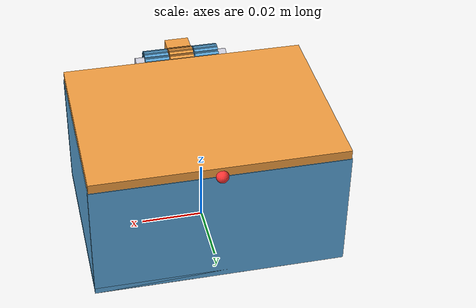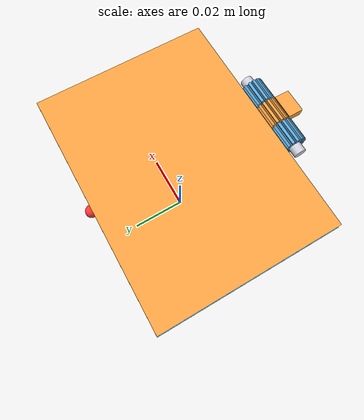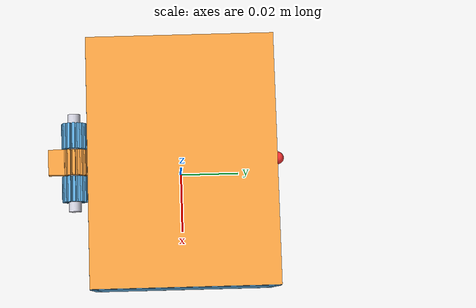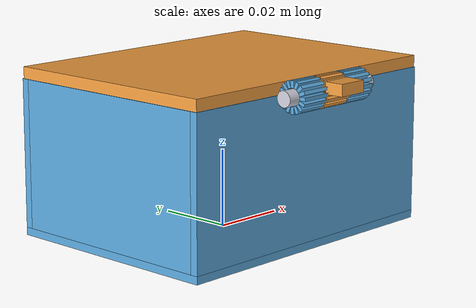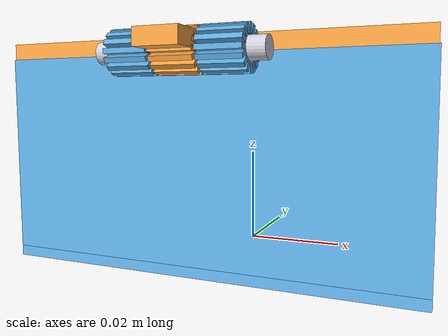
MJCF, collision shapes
<?xml version="1.0" ?>
<mujoco model="t2_sweep_V-B">
  <compiler angle="radian" meshdir="assets" autolimits="true"/>
  <option timestep="0.0005" integrator="implicitfast" cone="elliptic" impratio="10"/>
  <visual>
    <headlight ambient="0.5 0.5 0.5" diffuse="0.6 0.6 0.6" specular="0.2 0.2 0.2"/>
    <global offwidth="1280" offheight="960" azimuth="140" elevation="-20"/>
  </visual>
  <default>
    <geom solref="0.001 1.0" solimp="0.99 0.9999 0.0001" friction="0.44999999999999996 0.005 0.0001" condim="4" density="0"/>
  </default>
  <asset>
    <material name="base" rgba="0.35 0.65 0.85 1"/>
    <material name="mover" rgba="0.95 0.62 0.25 1"/>
    <material name="hardware" rgba="0.8 0.8 0.85 1"/>
    <material name="other" rgba="0.6 0.75 0.6 1"/>
    <mesh name="P1_vis" file="sweep_P1_vis.stl"/>
    <mesh name="P2_vis" file="sweep_P2_vis.stl"/>
    <mesh name="P3_vis" file="sweep_P3_vis.stl"/>
  </asset>
  <worldbody>
    <light pos="0.15 -0.25 0.4" dir="-0.3 0.5 -1" directional="true" diffuse="0.5 0.5 0.5"/>
    <camera name="iso" pos="0.125 -0.125 0.115" xyaxes="0.707 0.707 0 -0.38 0.38 0.84"/>
    <body name="P1" pos="0 0 0">
      <inertial pos="0.000000000 -0.001562117 0.015536559" mass="0.040045811" fullinertia="0.000028534821 0.000038571976 0.000052593291 -0.000000000000 0.000000000000 0.000001272200"/>
      <geom name="P1_vis" type="mesh" mesh="P1_vis" contype="0" conaffinity="0" group="2" material="base"/>
      <geom name="P1_c0" type="box" pos="0.000000000 0.000000000 0.001000000" size="0.040000000 0.030000000 0.001000000" group="3" material="base" contype="1" conaffinity="1"/>
      <geom name="P1_c1" type="box" pos="0.000000000 -0.029000000 0.020000000" size="0.040000000 0.001000000 0.020000000" group="3" material="base" contype="1" conaffinity="1"/>
      <geom name="P1_c2" type="box" pos="0.000000000 0.029000000 0.020000000" size="0.040000000 0.001000000 0.020000000" group="3" material="base" contype="1" conaffinity="1"/>
      <geom name="P1_c3" type="box" pos="-0.039000000 0.000000000 0.020000000" size="0.001000000 0.028000000 0.020000000" group="3" material="base" contype="1" conaffinity="1"/>
      <geom name="P1_c4" type="box" pos="0.039000000 0.000000000 0.020000000" size="0.001000000 0.028000000 0.020000000" group="3" material="base" contype="1" conaffinity="1"/>
      <geom name="P1_c5" type="box" pos="-0.008400000 -0.030878450 0.040000000" size="0.004000000 0.000878450 0.000446180" group="3" material="base" contype="2" conaffinity="2" quat="1.000000 0.000000 0.000000 0.000000"/>
      <geom name="P1_c6" type="box" pos="-0.008400000 -0.031116064 0.041194566" size="0.004000000 0.000878450 0.000446180" group="3" material="base" contype="2" conaffinity="2" quat="0.980785 0.195090 0.000000 0.000000"/>
      <geom name="P1_c7" type="box" pos="-0.008400000 -0.031792731 0.042207269" size="0.004000000 0.000878450 0.000446180" group="3" material="base" contype="2" conaffinity="2" quat="0.923880 0.382683 0.000000 0.000000"/>
      <geom name="P1_c8" type="box" pos="-0.008400000 -0.032805434 0.042883936" size="0.004000000 0.000878450 0.000446180" group="3" material="base" contype="2" conaffinity="2" quat="0.831470 0.555570 0.000000 0.000000"/>
      <geom name="P1_c9" type="box" pos="-0.008400000 -0.034000000 0.043121550" size="0.004000000 0.000878450 0.000446180" group="3" material="base" contype="2" conaffinity="2" quat="0.707107 0.707107 0.000000 0.000000"/>
      <geom name="P1_c10" type="box" pos="-0.008400000 -0.035194566 0.042883936" size="0.004000000 0.000878450 0.000446180" group="3" material="base" contype="2" conaffinity="2" quat="0.555570 0.831470 0.000000 0.000000"/>
      <geom name="P1_c11" type="box" pos="-0.008400000 -0.036207269 0.042207269" size="0.004000000 0.000878450 0.000446180" group="3" material="base" contype="2" conaffinity="2" quat="0.382683 0.923880 0.000000 0.000000"/>
      <geom name="P1_c12" type="box" pos="-0.008400000 -0.036883936 0.041194566" size="0.004000000 0.000878450 0.000446180" group="3" material="base" contype="2" conaffinity="2" quat="0.195090 0.980785 0.000000 0.000000"/>
      <geom name="P1_c13" type="box" pos="-0.008400000 -0.037121550 0.040000000" size="0.004000000 0.000878450 0.000446180" group="3" material="base" contype="2" conaffinity="2" quat="0.000000 1.000000 0.000000 0.000000"/>
      <geom name="P1_c14" type="box" pos="-0.008400000 -0.036883936 0.038805434" size="0.004000000 0.000878450 0.000446180" group="3" material="base" contype="2" conaffinity="2" quat="-0.195090 0.980785 0.000000 0.000000"/>
      <geom name="P1_c15" type="box" pos="-0.008400000 -0.036207269 0.037792731" size="0.004000000 0.000878450 0.000446180" group="3" material="base" contype="2" conaffinity="2" quat="-0.382683 0.923880 0.000000 0.000000"/>
      <geom name="P1_c16" type="box" pos="-0.008400000 -0.035194566 0.037116064" size="0.004000000 0.000878450 0.000446180" group="3" material="base" contype="2" conaffinity="2" quat="-0.555570 0.831470 0.000000 0.000000"/>
      <geom name="P1_c17" type="box" pos="-0.008400000 -0.034000000 0.036878450" size="0.004000000 0.000878450 0.000446180" group="3" material="base" contype="2" conaffinity="2" quat="-0.707107 0.707107 0.000000 0.000000"/>
      <geom name="P1_c18" type="box" pos="-0.008400000 -0.032805434 0.037116064" size="0.004000000 0.000878450 0.000446180" group="3" material="base" contype="2" conaffinity="2" quat="0.831470 -0.555570 0.000000 0.000000"/>
      <geom name="P1_c19" type="box" pos="-0.008400000 -0.031792731 0.037792731" size="0.004000000 0.000878450 0.000446180" group="3" material="base" contype="2" conaffinity="2" quat="0.923880 -0.382683 0.000000 0.000000"/>
      <geom name="P1_c20" type="box" pos="-0.008400000 -0.031116064 0.038805434" size="0.004000000 0.000878450 0.000446180" group="3" material="base" contype="2" conaffinity="2" quat="0.980785 -0.195090 0.000000 0.000000"/>
      <geom name="P1_c21" type="box" pos="0.008400000 -0.030878450 0.040000000" size="0.004000000 0.000878450 0.000446180" group="3" material="base" contype="2" conaffinity="2" quat="1.000000 0.000000 0.000000 0.000000"/>
      <geom name="P1_c22" type="box" pos="0.008400000 -0.031116064 0.041194566" size="0.004000000 0.000878450 0.000446180" group="3" material="base" contype="2" conaffinity="2" quat="0.980785 0.195090 0.000000 0.000000"/>
      <geom name="P1_c23" type="box" pos="0.008400000 -0.031792731 0.042207269" size="0.004000000 0.000878450 0.000446180" group="3" material="base" contype="2" conaffinity="2" quat="0.923880 0.382683 0.000000 0.000000"/>
      <geom name="P1_c24" type="box" pos="0.008400000 -0.032805434 0.042883936" size="0.004000000 0.000878450 0.000446180" group="3" material="base" contype="2" conaffinity="2" quat="0.831470 0.555570 0.000000 0.000000"/>
      <geom name="P1_c25" type="box" pos="0.008400000 -0.034000000 0.043121550" size="0.004000000 0.000878450 0.000446180" group="3" material="base" contype="2" conaffinity="2" quat="0.707107 0.707107 0.000000 0.000000"/>
      <geom name="P1_c26" type="box" pos="0.008400000 -0.035194566 0.042883936" size="0.004000000 0.000878450 0.000446180" group="3" material="base" contype="2" conaffinity="2" quat="0.555570 0.831470 0.000000 0.000000"/>
      <geom name="P1_c27" type="box" pos="0.008400000 -0.036207269 0.042207269" size="0.004000000 0.000878450 0.000446180" group="3" material="base" contype="2" conaffinity="2" quat="0.382683 0.923880 0.000000 0.000000"/>
      <geom name="P1_c28" type="box" pos="0.008400000 -0.036883936 0.041194566" size="0.004000000 0.000878450 0.000446180" group="3" material="base" contype="2" conaffinity="2" quat="0.195090 0.980785 0.000000 0.000000"/>
      <geom name="P1_c29" type="box" pos="0.008400000 -0.037121550 0.040000000" size="0.004000000 0.000878450 0.000446180" group="3" material="base" contype="2" conaffinity="2" quat="0.000000 1.000000 0.000000 0.000000"/>
      <geom name="P1_c30" type="box" pos="0.008400000 -0.036883936 0.038805434" size="0.004000000 0.000878450 0.000446180" group="3" material="base" contype="2" conaffinity="2" quat="-0.195090 0.980785 0.000000 0.000000"/>
      <geom name="P1_c31" type="box" pos="0.008400000 -0.036207269 0.037792731" size="0.004000000 0.000878450 0.000446180" group="3" material="base" contype="2" conaffinity="2" quat="-0.382683 0.923880 0.000000 0.000000"/>
      <geom name="P1_c32" type="box" pos="0.008400000 -0.035194566 0.037116064" size="0.004000000 0.000878450 0.000446180" group="3" material="base" contype="2" conaffinity="2" quat="-0.555570 0.831470 0.000000 0.000000"/>
      <geom name="P1_c33" type="box" pos="0.008400000 -0.034000000 0.036878450" size="0.004000000 0.000878450 0.000446180" group="3" material="base" contype="2" conaffinity="2" quat="-0.707107 0.707107 0.000000 0.000000"/>
      <geom name="P1_c34" type="box" pos="0.008400000 -0.032805434 0.037116064" size="0.004000000 0.000878450 0.000446180" group="3" material="base" contype="2" conaffinity="2" quat="0.831470 -0.555570 0.000000 0.000000"/>
      <geom name="P1_c35" type="box" pos="0.008400000 -0.031792731 0.037792731" size="0.004000000 0.000878450 0.000446180" group="3" material="base" contype="2" conaffinity="2" quat="0.923880 -0.382683 0.000000 0.000000"/>
      <geom name="P1_c36" type="box" pos="0.008400000 -0.031116064 0.038805434" size="0.004000000 0.000878450 0.000446180" group="3" material="base" contype="2" conaffinity="2" quat="0.980785 -0.195090 0.000000 0.000000"/>
      <site name="axis_ref" pos="0.000000000 -0.034000000 0.040000000" size="0.0012" rgba="0.1 0.9 0.2 1"/>
    </body>
    <body name="P2" pos="0 0 0">
      <freejoint name="P2_free"/>
      <inertial pos="-0.000000000 -0.000452055 0.041364090" mass="0.019045469" fullinertia="0.000006328323 0.000009729794 0.000015985062 -0.000000000000 0.000000000000 0.000000047822"/>
      <geom name="P2_vis" type="mesh" mesh="P2_vis" contype="0" conaffinity="0" group="2" material="mover"/>
      <geom name="P2_c0" type="box" pos="0.000000000 0.000000000 0.041500000" size="0.039800000 0.029800000 0.001500000" group="3" material="mover" contype="1" conaffinity="1"/>
      <geom name="P2_c1" type="box" pos="0.000000000 -0.030878450 0.040000000" size="0.004000000 0.000878450 0.000446180" group="3" material="mover" contype="2" conaffinity="2" quat="1.000000 0.000000 0.000000 0.000000"/>
      <geom name="P2_c2" type="box" pos="0.000000000 -0.031116064 0.041194566" size="0.004000000 0.000878450 0.000446180" group="3" material="mover" contype="2" conaffinity="2" quat="0.980785 0.195090 0.000000 0.000000"/>
      <geom name="P2_c3" type="box" pos="0.000000000 -0.031792731 0.042207269" size="0.004000000 0.000878450 0.000446180" group="3" material="mover" contype="2" conaffinity="2" quat="0.923880 0.382683 0.000000 0.000000"/>
      <geom name="P2_c4" type="box" pos="0.000000000 -0.032805434 0.042883936" size="0.004000000 0.000878450 0.000446180" group="3" material="mover" contype="2" conaffinity="2" quat="0.831470 0.555570 0.000000 0.000000"/>
      <geom name="P2_c5" type="box" pos="0.000000000 -0.034000000 0.043121550" size="0.004000000 0.000878450 0.000446180" group="3" material="mover" contype="2" conaffinity="2" quat="0.707107 0.707107 0.000000 0.000000"/>
      <geom name="P2_c6" type="box" pos="0.000000000 -0.035194566 0.042883936" size="0.004000000 0.000878450 0.000446180" group="3" material="mover" contype="2" conaffinity="2" quat="0.555570 0.831470 0.000000 0.000000"/>
      <geom name="P2_c7" type="box" pos="0.000000000 -0.036207269 0.042207269" size="0.004000000 0.000878450 0.000446180" group="3" material="mover" contype="2" conaffinity="2" quat="0.382683 0.923880 0.000000 0.000000"/>
      <geom name="P2_c8" type="box" pos="0.000000000 -0.036883936 0.041194566" size="0.004000000 0.000878450 0.000446180" group="3" material="mover" contype="2" conaffinity="2" quat="0.195090 0.980785 0.000000 0.000000"/>
      <geom name="P2_c9" type="box" pos="0.000000000 -0.037121550 0.040000000" size="0.004000000 0.000878450 0.000446180" group="3" material="mover" contype="2" conaffinity="2" quat="0.000000 1.000000 0.000000 0.000000"/>
      <geom name="P2_c10" type="box" pos="0.000000000 -0.036883936 0.038805434" size="0.004000000 0.000878450 0.000446180" group="3" material="mover" contype="2" conaffinity="2" quat="-0.195090 0.980785 0.000000 0.000000"/>
      <geom name="P2_c11" type="box" pos="0.000000000 -0.036207269 0.037792731" size="0.004000000 0.000878450 0.000446180" group="3" material="mover" contype="2" conaffinity="2" quat="-0.382683 0.923880 0.000000 0.000000"/>
      <geom name="P2_c12" type="box" pos="0.000000000 -0.035194566 0.037116064" size="0.004000000 0.000878450 0.000446180" group="3" material="mover" contype="2" conaffinity="2" quat="-0.555570 0.831470 0.000000 0.000000"/>
      <geom name="P2_c13" type="box" pos="0.000000000 -0.034000000 0.036878450" size="0.004000000 0.000878450 0.000446180" group="3" material="mover" contype="2" conaffinity="2" quat="-0.707107 0.707107 0.000000 0.000000"/>
      <geom name="P2_c14" type="box" pos="0.000000000 -0.032805434 0.037116064" size="0.004000000 0.000878450 0.000446180" group="3" material="mover" contype="2" conaffinity="2" quat="0.831470 -0.555570 0.000000 0.000000"/>
      <geom name="P2_c15" type="box" pos="0.000000000 -0.031792731 0.037792731" size="0.004000000 0.000878450 0.000446180" group="3" material="mover" contype="2" conaffinity="2" quat="0.923880 -0.382683 0.000000 0.000000"/>
      <geom name="P2_c16" type="box" pos="0.000000000 -0.031116064 0.038805434" size="0.004000000 0.000878450 0.000446180" group="3" material="mover" contype="2" conaffinity="2" quat="0.980785 -0.195090 0.000000 0.000000"/>
      <geom name="P2_c17" type="box" pos="0.000000000 -0.039500000 0.041500000" size="0.004000000 0.002500000 0.001500000" group="3" material="mover" contype="1" conaffinity="1"/>
      <site name="tip" pos="0.000000000 0.030000000 0.040000000" size="0.002" rgba="1 0.2 0.2 1"/>
      <site name="latch" pos="0.000000000 0.028000000 0.028000000" size="0.002" rgba="0.2 0.8 0.2 1"/>
    </body>
    <body name="P3" pos="0 0 0">
      <freejoint name="P3_free"/>
      <inertial pos="0.000000000 -0.034000000 0.040000000" mass="0.000490732" fullinertia="0.000000000980 0.000000039284 0.000000039284 -0.000000000000 0.000000000000 -0.000000000000"/>
      <geom name="P3_vis" type="mesh" mesh="P3_vis" contype="0" conaffinity="0" group="2" material="hardware"/>
      <geom name="P3_c0" type="cylinder" pos="0.000000000 -0.034000000 0.040000000" size="0.002000000 0.015400000" group="3" material="hardware" contype="2" conaffinity="2" quat="0.707107 0.000000 0.707107 0.000000"/>
      <site name="pin_center" pos="0.000000000 -0.034000000 0.040000000" size="0.0012" rgba="0.9 0.1 0.9 1"/>
    </body>
  </worldbody>
</mujoco>
